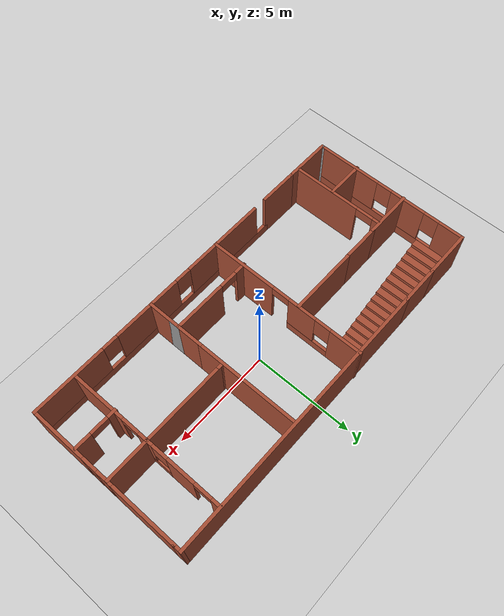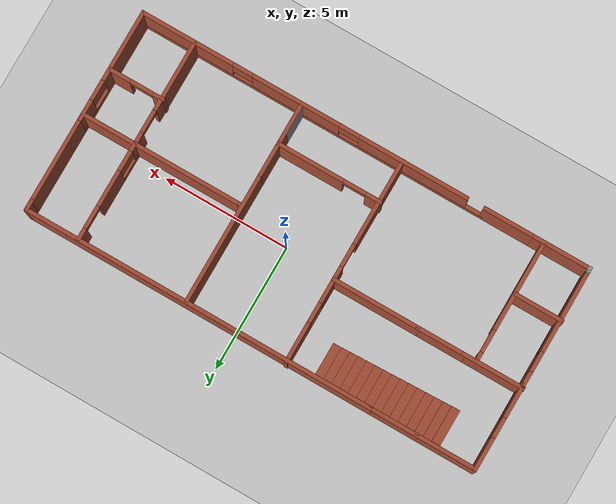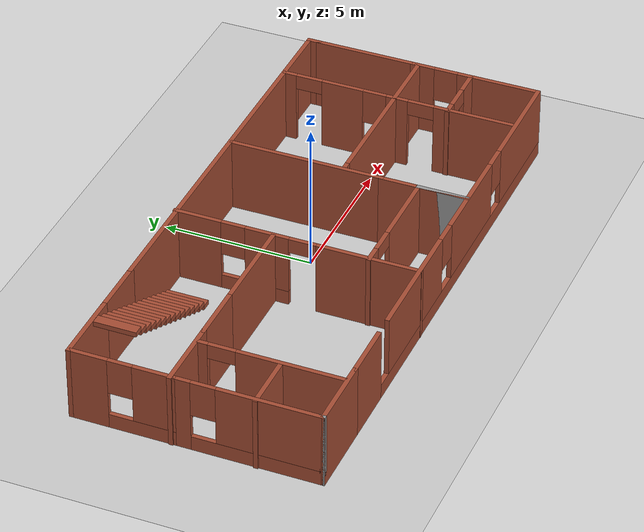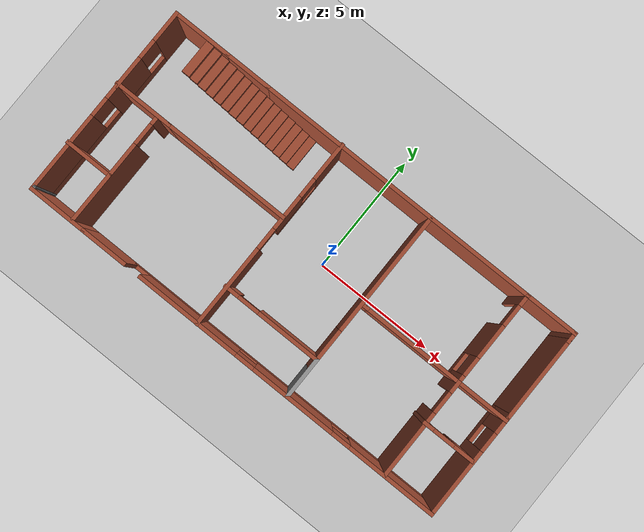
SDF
<sdf version="1.7">
 <world name="default">
  <light name="sun" type="directional">
   <pose>0 0 10 0 -0 0</pose>
   <diffuse>0.8 0.8 0.8 1</diffuse>
   <specular>0.2 0.2 0.2 1</specular>
   <attenuation>
    <range>1000</range>
    <constant>0.9</constant>
    <linear>0.01</linear>
    <quadratic>0.001</quadratic>
   </attenuation>
   <direction>-0.5 0.1 -0.9</direction>
   <spot><inner_angle>0</inner_angle><outer_angle>0</outer_angle><falloff>0</falloff></spot>
  </light>
  <model name="ground_plane">
   <static>1</static>
   <link name="link">
    <collision name="collision">
     <geometry><plane><normal>0 0 1</normal><size>100 100</size></plane></geometry>
     <surface><friction><ode><mu>100</mu><mu2>50</mu2></ode></friction></surface>
    </collision>
    <visual name="visual">
     <cast_shadows>0</cast_shadows>
     <geometry><plane><normal>0 0 1</normal><size>100 100</size></plane></geometry>
     <material>
      <script><uri>file://media/materials/scripts/gazebo.material</uri><name>Gazebo/Grey</name></script>
     </material>
    </visual>
   </link>
  </model>
  <gravity>0 0 -9.8</gravity>
  <magnetic_field>6e-06 2.3e-05 -4.2e-05</magnetic_field>
  <atmosphere type="adiabatic"/>
  <physics type="ode">
   <max_step_size>0.001</max_step_size>
   <real_time_factor>1</real_time_factor>
   <real_time_update_rate>1000</real_time_update_rate>
  </physics>
  <scene><ambient>0.4 0.4 0.4 1</ambient><background>0.7 0.7 0.7 1</background><shadows>1</shadows></scene>
  <audio><device>default</device></audio>
  <spherical_coordinates>
   <surface_model>EARTH_WGS84</surface_model>
   <latitude_deg>0</latitude_deg>
   <longitude_deg>0</longitude_deg>
   <elevation>0</elevation>
   <heading_deg>0</heading_deg>
  </spherical_coordinates>
  <model name="my_test_world">
   <pose>-0.653816 -0.302964 -0.027995 0 -0 0</pose>
   <link name="Stairs_1">
    <visual name="Stairs_1_Visual_0">
     <pose>-2.66061 3.11353 0.083333 0 -0 -1.5708</pose>
     <geometry><box><size>1.40227 0.336583 0.166667</size></box></geometry>
     <material>
      <script><uri>file://media/materials/scripts/gazebo.material</uri><name>Gazebo/Bricks</name></script>
      <ambient>1 1 1 1</ambient>
     </material>
     <meta><layer>0</layer></meta>
    </visual>
    <collision name="Stairs_1_Collision_0">
     <geometry><box><size>1.40227 0.336583 0.166667</size></box></geometry>
     <pose>-2.66061 3.11353 0.083333 0 -0 -1.5708</pose>
    </collision>
    <visual name="Stairs_1_Visual_1">
     <pose>-2.99719 3.11353 0.25 0 -0 -1.5708</pose>
     <geometry><box><size>1.40227 0.336583 0.166667</size></box></geometry>
     <material>
      <script><uri>file://media/materials/scripts/gazebo.material</uri><name>Gazebo/Bricks</name></script>
      <ambient>1 1 1 1</ambient>
     </material>
     <meta><layer>0</layer></meta>
    </visual>
    <collision name="Stairs_1_Collision_1">
     <geometry><box><size>1.40227 0.336583 0.166667</size></box></geometry>
     <pose>-2.99719 3.11353 0.25 0 -0 -1.5708</pose>
    </collision>
    <visual name="Stairs_1_Visual_2">
     <pose>-3.33377 3.11353 0.416667 0 -0 -1.5708</pose>
     <geometry><box><size>1.40227 0.336583 0.166667</size></box></geometry>
     <material>
      <script><uri>file://media/materials/scripts/gazebo.material</uri><name>Gazebo/Bricks</name></script>
      <ambient>1 1 1 1</ambient>
     </material>
     <meta><layer>0</layer></meta>
    </visual>
    <collision name="Stairs_1_Collision_2">
     <geometry><box><size>1.40227 0.336583 0.166667</size></box></geometry>
     <pose>-3.33377 3.11353 0.416667 0 -0 -1.5708</pose>
    </collision>
    <visual name="Stairs_1_Visual_3">
     <pose>-3.67036 3.11353 0.583333 0 -0 -1.5708</pose>
     <geometry><box><size>1.40227 0.336583 0.166667</size></box></geometry>
     <material>
      <script><uri>file://media/materials/scripts/gazebo.material</uri><name>Gazebo/Bricks</name></script>
      <ambient>1 1 1 1</ambient>
     </material>
     <meta><layer>0</layer></meta>
    </visual>
    <collision name="Stairs_1_Collision_3">
     <geometry><box><size>1.40227 0.336583 0.166667</size></box></geometry>
     <pose>-3.67036 3.11353 0.583333 0 -0 -1.5708</pose>
    </collision>
    <visual name="Stairs_1_Visual_4">
     <pose>-4.00694 3.11353 0.75 0 -0 -1.5708</pose>
     <geometry><box><size>1.40227 0.336583 0.166667</size></box></geometry>
     <material>
      <script><uri>file://media/materials/scripts/gazebo.material</uri><name>Gazebo/Bricks</name></script>
      <ambient>1 1 1 1</ambient>
     </material>
     <meta><layer>0</layer></meta>
    </visual>
    <collision name="Stairs_1_Collision_4">
     <geometry><box><size>1.40227 0.336583 0.166667</size></box></geometry>
     <pose>-4.00694 3.11353 0.75 0 -0 -1.5708</pose>
    </collision>
    <visual name="Stairs_1_Visual_5">
     <pose>-4.34352 3.11353 0.916667 0 -0 -1.5708</pose>
     <geometry><box><size>1.40227 0.336583 0.166667</size></box></geometry>
     <material>
      <script><uri>file://media/materials/scripts/gazebo.material</uri><name>Gazebo/Bricks</name></script>
      <ambient>1 1 1 1</ambient>
     </material>
     <meta><layer>0</layer></meta>
    </visual>
    <collision name="Stairs_1_Collision_5">
     <geometry><box><size>1.40227 0.336583 0.166667</size></box></geometry>
     <pose>-4.34352 3.11353 0.916667 0 -0 -1.5708</pose>
    </collision>
    <visual name="Stairs_1_Visual_6">
     <pose>-4.68011 3.11353 1.08333 0 -0 -1.5708</pose>
     <geometry><box><size>1.40227 0.336583 0.166667</size></box></geometry>
     <material>
      <script><uri>file://media/materials/scripts/gazebo.material</uri><name>Gazebo/Bricks</name></script>
      <ambient>1 1 1 1</ambient>
     </material>
     <meta><layer>0</layer></meta>
    </visual>
    <collision name="Stairs_1_Collision_6">
     <geometry><box><size>1.40227 0.336583 0.166667</size></box></geometry>
     <pose>-4.68011 3.11353 1.08333 0 -0 -1.5708</pose>
    </collision>
    <visual name="Stairs_1_Visual_7">
     <pose>-5.01669 3.11353 1.25 0 -0 -1.5708</pose>
     <geometry><box><size>1.40227 0.336583 0.166667</size></box></geometry>
     <material>
      <script><uri>file://media/materials/scripts/gazebo.material</uri><name>Gazebo/Bricks</name></script>
      <ambient>1 1 1 1</ambient>
     </material>
     <meta><layer>0</layer></meta>
    </visual>
    <collision name="Stairs_1_Collision_7">
     <geometry><box><size>1.40227 0.336583 0.166667</size></box></geometry>
     <pose>-5.01669 3.11353 1.25 0 -0 -1.5708</pose>
    </collision>
    <visual name="Stairs_1_Visual_8">
     <pose>-5.35327 3.11353 1.41667 0 -0 -1.5708</pose>
     <geometry><box><size>1.40227 0.336583 0.166667</size></box></geometry>
     <material>
      <script><uri>file://media/materials/scripts/gazebo.material</uri><name>Gazebo/Bricks</name></script>
      <ambient>1 1 1 1</ambient>
     </material>
     <meta><layer>0</layer></meta>
    </visual>
    <collision name="Stairs_1_Collision_8">
     <geometry><box><size>1.40227 0.336583 0.166667</size></box></geometry>
     <pose>-5.35327 3.11353 1.41667 0 -0 -1.5708</pose>
    </collision>
    <visual name="Stairs_1_Visual_9">
     <pose>-5.68986 3.11353 1.58333 0 -0 -1.5708</pose>
     <geometry><box><size>1.40227 0.336583 0.166667</size></box></geometry>
     <material>
      <script><uri>file://media/materials/scripts/gazebo.material</uri><name>Gazebo/Bricks</name></script>
      <ambient>1 1 1 1</ambient>
     </material>
     <meta><layer>0</layer></meta>
    </visual>
    <collision name="Stairs_1_Collision_9">
     <geometry><box><size>1.40227 0.336583 0.166667</size></box></geometry>
     <pose>-5.68986 3.11353 1.58333 0 -0 -1.5708</pose>
    </collision>
    <visual name="Stairs_1_Visual_10">
     <pose>-6.02644 3.11353 1.75 0 -0 -1.5708</pose>
     <geometry><box><size>1.40227 0.336583 0.166667</size></box></geometry>
     <material>
      <script><uri>file://media/materials/scripts/gazebo.material</uri><name>Gazebo/Bricks</name></script>
      <ambient>1 1 1 1</ambient>
     </material>
     <meta><layer>0</layer></meta>
    </visual>
    <collision name="Stairs_1_Collision_10">
     <geometry><box><size>1.40227 0.336583 0.166667</size></box></geometry>
     <pose>-6.02644 3.11353 1.75 0 -0 -1.5708</pose>
    </collision>
    <visual name="Stairs_1_Visual_11">
     <pose>-6.36302 3.11353 1.91667 0 -0 -1.5708</pose>
     <geometry><box><size>1.40227 0.336583 0.166667</size></box></geometry>
     <material>
      <script><uri>file://media/materials/scripts/gazebo.material</uri><name>Gazebo/Bricks</name></script>
      <ambient>1 1 1 1</ambient>
     </material>
     <meta><layer>0</layer></meta>
    </visual>
    <collision name="Stairs_1_Collision_11">
     <geometry><box><size>1.40227 0.336583 0.166667</size></box></geometry>
     <pose>-6.36302 3.11353 1.91667 0 -0 -1.5708</pose>
    </collision>
    <visual name="Stairs_1_Visual_12">
     <pose>-6.69961 3.11353 2.08333 0 -0 -1.5708</pose>
     <geometry><box><size>1.40227 0.336583 0.166667</size></box></geometry>
     <material>
      <script><uri>file://media/materials/scripts/gazebo.material</uri><name>Gazebo/Bricks</name></script>
      <ambient>1 1 1 1</ambient>
     </material>
     <meta><layer>0</layer></meta>
    </visual>
    <collision name="Stairs_1_Collision_12">
     <geometry><box><size>1.40227 0.336583 0.166667</size></box></geometry>
     <pose>-6.69961 3.11353 2.08333 0 -0 -1.5708</pose>
    </collision>
    <visual name="Stairs_1_Visual_13">
     <pose>-7.03619 3.11353 2.25 0 -0 -1.5708</pose>
     <geometry><box><size>1.40227 0.336583 0.166667</size></box></geometry>
     <material>
      <script><uri>file://media/materials/scripts/gazebo.material</uri><name>Gazebo/Bricks</name></script>
      <ambient>1 1 1 1</ambient>
     </material>
     <meta><layer>0</layer></meta>
    </visual>
    <collision name="Stairs_1_Collision_13">
     <geometry><box><size>1.40227 0.336583 0.166667</size></box></geometry>
     <pose>-7.03619 3.11353 2.25 0 -0 -1.5708</pose>
    </collision>
    <visual name="Stairs_1_Visual_14">
     <pose>-7.37277 3.11353 2.41667 0 -0 -1.5708</pose>
     <geometry><box><size>1.40227 0.336583 0.166667</size></box></geometry>
     <material>
      <script><uri>file://media/materials/scripts/gazebo.material</uri><name>Gazebo/Bricks</name></script>
      <ambient>1 1 1 1</ambient>
     </material>
     <meta><layer>0</layer></meta>
    </visual>
    <collision name="Stairs_1_Collision_14">
     <geometry><box><size>1.40227 0.336583 0.166667</size></box></geometry>
     <pose>-7.37277 3.11353 2.41667 0 -0 -1.5708</pose>
    </collision>
   </link>
   <link name="Wall_12">
    <pose>2.12401 -4.15318 0 0 -0 0</pose>
    <visual name="Wall_12_Visual_0">
     <pose>0 0 0.25 0 -0 0</pose>
     <geometry><box><size>14 0.15 0.5</size></box></geometry>
     <material>
      <script><uri>file://media/materials/scripts/gazebo.material</uri><name>Gazebo/Bricks</name></script>
      <ambient>1 1 1 1</ambient>
     </material>
     <meta><layer>0</layer></meta>
    </visual>
    <collision name="Wall_12_Collision_0">
     <geometry><box><size>14 0.15 0.5</size></box></geometry>
     <pose>0 0 0.25 0 -0 0</pose>
    </collision>
    <visual name="Wall_12_Visual_1">
     <pose>-4.05327 0 1.5 0 -0 0</pose>
     <geometry><box><size>4.3893 0.15 2</size></box></geometry>
     <material>
      <script><uri>file://media/materials/scripts/gazebo.material</uri><name>Gazebo/Bricks</name></script>
      <ambient>1 1 1 1</ambient>
     </material>
     <meta><layer>0</layer></meta>
    </visual>
    <collision name="Wall_12_Collision_1">
     <geometry><box><size>4.3893 0.15 2</size></box></geometry>
     <pose>-4.05327 0 1.5 0 -0 0</pose>
    </collision>
    <visual name="Wall_12_Visual_2">
     <pose>0.703592 0 1.5 0 -0 0</pose>
     <geometry><box><size>3.52442 0.15 2</size></box></geometry>
     <material>
      <script><uri>file://media/materials/scripts/gazebo.material</uri><name>Gazebo/Bricks</name></script>
      <ambient>1 1 1 1</ambient>
     </material>
     <meta><layer>0</layer></meta>
    </visual>
    <collision name="Wall_12_Collision_2">
     <geometry><box><size>3.52442 0.15 2</size></box></geometry>
     <pose>0.703592 0 1.5 0 -0 0</pose>
    </collision>
    <visual name="Wall_12_Visual_3">
     <pose>5.1329 0 1.5 0 -0 0</pose>
     <geometry><box><size>3.7342 0.15 2</size></box></geometry>
     <material>
      <script><uri>file://media/materials/scripts/gazebo.material</uri><name>Gazebo/Bricks</name></script>
      <ambient>1 1 1 1</ambient>
     </material>
     <meta><layer>0</layer></meta>
    </visual>
    <collision name="Wall_12_Collision_3">
     <geometry><box><size>3.7342 0.15 2</size></box></geometry>
     <pose>5.1329 0 1.5 0 -0 0</pose>
    </collision>
    <visual name="Wall_12_Visual_4">
     <pose>-1.45862 0 1.9 0 -0 0</pose>
     <geometry><box><size>0.8 0.15 1.2</size></box></geometry>
     <material>
      <script><uri>file://media/materials/scripts/gazebo.material</uri><name>Gazebo/Bricks</name></script>
      <ambient>1 1 1 1</ambient>
     </material>
     <meta><layer>0</layer></meta>
    </visual>
    <collision name="Wall_12_Collision_4">
     <geometry><box><size>0.8 0.15 1.2</size></box></geometry>
     <pose>-1.45862 0 1.9 0 -0 0</pose>
    </collision>
    <visual name="Wall_12_Visual_5">
     <pose>2.8658 0 1.9 0 -0 0</pose>
     <geometry><box><size>0.8 0.15 1.2</size></box></geometry>
     <material>
      <script><uri>file://media/materials/scripts/gazebo.material</uri><name>Gazebo/Bricks</name></script>
      <ambient>1 1 1 1</ambient>
     </material>
     <meta><layer>0</layer></meta>
    </visual>
    <collision name="Wall_12_Collision_5">
     <geometry><box><size>0.8 0.15 1.2</size></box></geometry>
     <pose>2.8658 0 1.9 0 -0 0</pose>
    </collision>
   </link>
   <link name="Wall_13">
    <pose>9.04901 -1.97818 0 0 -0 1.5708</pose>
    <visual name="Wall_13_Visual_0">
     <pose>-0.820674 0 1.25 0 -0 0</pose>
     <geometry><box><size>2.85865 0.15 2.5</size></box></geometry>
     <material>
      <script><uri>file://media/materials/scripts/gazebo.material</uri><name>Gazebo/Bricks</name></script>
      <ambient>1 1 1 1</ambient>
     </material>
     <meta><layer>0</layer></meta>
    </visual>
    <collision name="Wall_13_Collision_0">
     <geometry><box><size>2.85865 0.15 2.5</size></box></geometry>
     <pose>-0.820674 0 1.25 0 -0 0</pose>
    </collision>
    <visual name="Wall_13_Visual_1">
     <pose>1.42933 0 0.25 0 -0 0</pose>
     <geometry><box><size>1.64135 0.15 0.5</size></box></geometry>
     <material>
      <script><uri>file://media/materials/scripts/gazebo.material</uri><name>Gazebo/Bricks</name></script>
      <ambient>1 1 1 1</ambient>
     </material>
     <meta><layer>0</layer></meta>
    </visual>
    <collision name="Wall_13_Collision_1">
     <geometry><box><size>1.64135 0.15 0.5</size></box></geometry>
     <pose>1.42933 0 0.25 0 -0 0</pose>
    </collision>
    <visual name="Wall_13_Visual_2">
     <pose>1.82933 0 1.5 0 -0 0</pose>
     <geometry><box><size>0.841349 0.15 2</size></box></geometry>
     <material>
      <script><uri>file://media/materials/scripts/gazebo.material</uri><name>Gazebo/Bricks</name></script>
      <ambient>1 1 1 1</ambient>
     </material>
     <meta><layer>0</layer></meta>
    </visual>
    <collision name="Wall_13_Collision_2">
     <geometry><box><size>0.841349 0.15 2</size></box></geometry>
     <pose>1.82933 0 1.5 0 -0 0</pose>
    </collision>
    <visual name="Wall_13_Visual_3">
     <pose>1.00865 0 1.9 0 -0 0</pose>
     <geometry><box><size>0.8 0.15 1.2</size></box></geometry>
     <material>
      <script><uri>file://media/materials/scripts/gazebo.material</uri><name>Gazebo/Bricks</name></script>
      <ambient>1 1 1 1</ambient>
     </material>
     <meta><layer>0</layer></meta>
    </visual>
    <collision name="Wall_13_Collision_3">
     <geometry><box><size>0.8 0.15 1.2</size></box></geometry>
     <pose>1.00865 0 1.9 0 -0 0</pose>
    </collision>
   </link>
   <link name="Wall_21">
    <pose>6.94083 1.93273 0 0 -0 -1.5708</pose>
    <visual name="Wall_21_Visual_0">
     <pose>-1.75506 0 1.25 0 -0 0</pose>
     <geometry><box><size>0.489884 0.15 2.5</size></box></geometry>
     <material>
      <script><uri>file://media/materials/scripts/gazebo.material</uri><name>Gazebo/Bricks</name></script>
      <ambient>1 1 1 1</ambient>
     </material>
     <meta><layer>0</layer></meta>
    </visual>
    <collision name="Wall_21_Collision_0">
     <geometry><box><size>0.489884 0.15 2.5</size></box></geometry>
     <pose>-1.75506 0 1.25 0 -0 0</pose>
    </collision>
    <visual name="Wall_21_Visual_1">
     <pose>0.111357 0 1.25 0 -0 0</pose>
     <geometry><box><size>1.44295 0.15 2.5</size></box></geometry>
     <material>
      <script><uri>file://media/materials/scripts/gazebo.material</uri><name>Gazebo/Bricks</name></script>
      <ambient>1 1 1 1</ambient>
     </material>
     <meta><layer>0</layer></meta>
    </visual>
    <collision name="Wall_21_Collision_1">
     <geometry><box><size>1.44295 0.15 2.5</size></box></geometry>
     <pose>0.111357 0 1.25 0 -0 0</pose>
    </collision>
    <visual name="Wall_21_Visual_2">
     <pose>1.41641 0 0.25 0 -0 0</pose>
     <geometry><box><size>1.16717 0.15 0.5</size></box></geometry>
     <material>
      <script><uri>file://media/materials/scripts/gazebo.material</uri><name>Gazebo/Bricks</name></script>
      <ambient>1 1 1 1</ambient>
     </material>
     <meta><layer>0</layer></meta>
    </visual>
    <collision name="Wall_21_Collision_2">
     <geometry><box><size>1.16717 0.15 0.5</size></box></geometry>
     <pose>1.41641 0 0.25 0 -0 0</pose>
    </collision>
    <visual name="Wall_21_Visual_3">
     <pose>1.81641 0 1.5 0 -0 0</pose>
     <geometry><box><size>0.367169 0.15 2</size></box></geometry>
     <material>
      <script><uri>file://media/materials/scripts/gazebo.material</uri><name>Gazebo/Bricks</name></script>
      <ambient>1 1 1 1</ambient>
     </material>
     <meta><layer>0</layer></meta>
    </visual>
    <collision name="Wall_21_Collision_3">
     <geometry><box><size>0.367169 0.15 2</size></box></geometry>
     <pose>1.81641 0 1.5 0 -0 0</pose>
    </collision>
    <visual name="Wall_21_Visual_4">
     <pose>1.23283 0 1.9 0 -0 0</pose>
     <geometry><box><size>0.8 0.15 1.2</size></box></geometry>
     <material>
      <script><uri>file://media/materials/scripts/gazebo.material</uri><name>Gazebo/Bricks</name></script>
      <ambient>1 1 1 1</ambient>
     </material>
     <meta><layer>0</layer></meta>
    </visual>
    <collision name="Wall_21_Collision_4">
     <geometry><box><size>0.8 0.15 1.2</size></box></geometry>
     <pose>1.23283 0 1.9 0 -0 0</pose>
    </collision>
    <visual name="Wall_21_Visual_5">
     <pose>-1.06012 0 2.25 0 -0 0</pose>
     <geometry><box><size>0.9 0.15 0.5</size></box></geometry>
     <material>
      <script><uri>file://media/materials/scripts/gazebo.material</uri><name>Gazebo/Bricks</name></script>
      <ambient>1 1 1 1</ambient>
     </material>
     <meta><layer>0</layer></meta>
    </visual>
    <collision name="Wall_21_Collision_5">
     <geometry><box><size>0.9 0.15 0.5</size></box></geometry>
     <pose>-1.06012 0 2.25 0 -0 0</pose>
    </collision>
   </link>
   <link name="Wall_22">
    <collision name="Wall_22_Collision">
     <geometry><box><size>2.25 0.15 2.5</size></box></geometry>
     <pose>0 0 1.25 0 -0 0</pose>
    </collision>
    <visual name="Wall_22_Visual">
     <pose>0 0 1.25 0 -0 0</pose>
     <geometry><box><size>2.25 0.15 2.5</size></box></geometry>
     <material>
      <script><uri>file://media/materials/scripts/gazebo.material</uri><name>Gazebo/Bricks</name></script>
      <ambient>1 1 1 1</ambient>
     </material>
     <meta><layer>0</layer></meta>
    </visual>
    <pose>7.99083 0.007727 0 0 -0 0</pose>
   </link>
   <link name="Wall_30">
    <pose>6.94083 -2.04227 0 0 -0 -1.5708</pose>
    <visual name="Wall_30_Visual_0">
     <pose>-1.85404 0 1.25 0 -0 0</pose>
     <geometry><box><size>0.541917 0.15 2.5</size></box></geometry>
     <material>
      <script><uri>file://media/materials/scripts/gazebo.material</uri><name>Gazebo/Bricks</name></script>
      <ambient>1 1 1 1</ambient>
     </material>
     <meta><layer>0</layer></meta>
    </visual>
    <collision name="Wall_30_Collision_0">
     <geometry><box><size>0.541917 0.15 2.5</size></box></geometry>
     <pose>-1.85404 0 1.25 0 -0 0</pose>
    </collision>
    <visual name="Wall_30_Visual_1">
     <pose>0.720958 0 1.25 0 -0 0</pose>
     <geometry><box><size>2.80808 0.15 2.5</size></box></geometry>
     <material>
      <script><uri>file://media/materials/scripts/gazebo.material</uri><name>Gazebo/Bricks</name></script>
      <ambient>1 1 1 1</ambient>
     </material>
     <meta><layer>0</layer></meta>
    </visual>
    <collision name="Wall_30_Collision_1">
     <geometry><box><size>2.80808 0.15 2.5</size></box></geometry>
     <pose>0.720958 0 1.25 0 -0 0</pose>
    </collision>
    <visual name="Wall_30_Visual_2">
     <pose>-1.13308 0 2.25 0 -0 0</pose>
     <geometry><box><size>0.9 0.15 0.5</size></box></geometry>
     <material>
      <script><uri>file://media/materials/scripts/gazebo.material</uri><name>Gazebo/Bricks</name></script>
      <ambient>1 1 1 1</ambient>
     </material>
     <meta><layer>0</layer></meta>
    </visual>
    <collision name="Wall_30_Collision_2">
     <geometry><box><size>0.9 0.15 0.5</size></box></geometry>
     <pose>-1.13308 0 2.25 0 -0 0</pose>
    </collision>
   </link>
   <link name="Wall_32">
    <pose>7.9506 -1.83441 0 0 -0 0</pose>
    <visual name="Wall_32_Visual_0">
     <pose>-0.890115 0 1.25 0 -0 0</pose>
     <geometry><box><size>0.46977 0.15 2.5</size></box></geometry>
     <material>
      <script><uri>file://media/materials/scripts/gazebo.material</uri><name>Gazebo/Bricks</name></script>
      <ambient>1 1 1 1</ambient>
     </material>
     <meta><layer>0</layer></meta>
    </visual>
    <collision name="Wall_32_Collision_0">
     <geometry><box><size>0.46977 0.15 2.5</size></box></geometry>
     <pose>-0.890115 0 1.25 0 -0 0</pose>
    </collision>
    <visual name="Wall_32_Visual_1">
     <pose>0.684885 0 1.25 0 -0 0</pose>
     <geometry><box><size>0.88023 0.15 2.5</size></box></geometry>
     <material>
      <script><uri>file://media/materials/scripts/gazebo.material</uri><name>Gazebo/Bricks</name></script>
      <ambient>1 1 1 1</ambient>
     </material>
     <meta><layer>0</layer></meta>
    </visual>
    <collision name="Wall_32_Collision_1">
     <geometry><box><size>0.88023 0.15 2.5</size></box></geometry>
     <pose>0.684885 0 1.25 0 -0 0</pose>
    </collision>
    <visual name="Wall_32_Visual_2">
     <pose>-0.20523 0 2.25 0 -0 0</pose>
     <geometry><box><size>0.9 0.15 0.5</size></box></geometry>
     <material>
      <script><uri>file://media/materials/scripts/gazebo.material</uri><name>Gazebo/Bricks</name></script>
      <ambient>1 1 1 1</ambient>
     </material>
     <meta><layer>0</layer></meta>
    </visual>
    <collision name="Wall_32_Collision_2">
     <geometry><box><size>0.9 0.15 0.5</size></box></geometry>
     <pose>-0.20523 0 2.25 0 -0 0</pose>
    </collision>
   </link>
   <link name="Wall_36">
    <collision name="Wall_36_Collision">
     <geometry><box><size>4.25 0.15 2.5</size></box></geometry>
     <pose>0 0 1.25 0 -0 0</pose>
    </collision>
    <visual name="Wall_36_Visual">
     <pose>0 0 1.25 0 -0 0</pose>
     <geometry><box><size>4.25 0.15 2.5</size></box></geometry>
     <material>
      <script><uri>file://media/materials/scripts/gazebo.material</uri><name>Gazebo/Bricks</name></script>
      <ambient>0.921569 0.807843 0.615686 1</ambient>
     </material>
     <meta><layer>0</layer></meta>
    </visual>
    <pose>4.89083 0.007727 0 0 -0 3.14159</pose>
   </link>
   <link name="Wall_38">
    <pose>-1.46664 -0.111818 0 0 -0 -1.5708</pose>
    <visual name="Wall_38_Visual_0">
     <pose>-3.31199 0 1.25 0 -0 0</pose>
     <geometry><box><size>1.62602 0.15 2.5</size></box></geometry>
     <material>
      <script><uri>file://media/materials/scripts/gazebo.material</uri><name>Gazebo/Bricks</name></script>
      <ambient>1 1 1 1</ambient>
     </material>
     <meta><layer>0</layer></meta>
    </visual>
    <collision name="Wall_38_Collision_0">
     <geometry><box><size>1.62602 0.15 2.5</size></box></geometry>
     <pose>-3.31199 0 1.25 0 -0 0</pose>
    </collision>
    <visual name="Wall_38_Visual_1">
     <pose>2.39454 0 1.25 0 -0 0</pose>
     <geometry><box><size>3.46092 0.15 2.5</size></box></geometry>
     <material>
      <script><uri>file://media/materials/scripts/gazebo.material</uri><name>Gazebo/Bricks</name></script>
      <ambient>1 1 1 1</ambient>
     </material>
     <meta><layer>0</layer></meta>
    </visual>
    <collision name="Wall_38_Collision_1">
     <geometry><box><size>3.46092 0.15 2.5</size></box></geometry>
     <pose>2.39454 0 1.25 0 -0 0</pose>
    </collision>
    <visual name="Wall_38_Visual_2">
     <pose>-1.36745 0 0.25 0 -0 0</pose>
     <geometry><box><size>2.26306 0.15 0.5</size></box></geometry>
     <material>
      <script><uri>file://media/materials/scripts/gazebo.material</uri><name>Gazebo/Bricks</name></script>
      <ambient>1 1 1 1</ambient>
     </material>
     <meta><layer>0</layer></meta>
    </visual>
    <collision name="Wall_38_Collision_2">
     <geometry><box><size>2.26306 0.15 0.5</size></box></geometry>
     <pose>-1.36745 0 0.25 0 -0 0</pose>
    </collision>
    <visual name="Wall_38_Visual_3">
     <pose>-0.967453 0 1.5 0 -0 0</pose>
     <geometry><box><size>1.46306 0.15 2</size></box></geometry>
     <material>
      <script><uri>file://media/materials/scripts/gazebo.material</uri><name>Gazebo/Bricks</name></script>
      <ambient>1 1 1 1</ambient>
     </material>
     <meta><layer>0</layer></meta>
    </visual>
    <collision name="Wall_38_Collision_3">
     <geometry><box><size>1.46306 0.15 2</size></box></geometry>
     <pose>-0.967453 0 1.5 0 -0 0</pose>
    </collision>
    <visual name="Wall_38_Visual_4">
     <pose>-2.09898 0 1.9 0 -0 0</pose>
     <geometry><box><size>0.8 0.15 1.2</size></box></geometry>
     <material>
      <script><uri>file://media/materials/scripts/gazebo.material</uri><name>Gazebo/Bricks</name></script>
      <ambient>1 1 1 1</ambient>
     </material>
     <meta><layer>0</layer></meta>
    </visual>
    <collision name="Wall_38_Collision_4">
     <geometry><box><size>0.8 0.15 1.2</size></box></geometry>
     <pose>-2.09898 0 1.9 0 -0 0</pose>
    </collision>
    <visual name="Wall_38_Visual_5">
     <pose>0.214077 0 2.25 0 -0 0</pose>
     <geometry><box><size>0.9 0.15 0.5</size></box></geometry>
     <material>
      <script><uri>file://media/materials/scripts/gazebo.material</uri><name>Gazebo/Bricks</name></script>
      <ambient>1 1 1 1</ambient>
     </material>
     <meta><layer>0</layer></meta>
    </visual>
    <collision name="Wall_38_Collision_5">
     <geometry><box><size>0.9 0.15 0.5</size></box></geometry>
     <pose>0.214077 0 2.25 0 -0 0</pose>
    </collision>
   </link>
   <link name="Wall_40">
    <collision name="Wall_40_Collision">
     <geometry><box><size>3.5 0.15 2.5</size></box></geometry>
     <pose>0 0 1.25 0 -0 0</pose>
    </collision>
    <visual name="Wall_40_Visual">
     <pose>0 0 1.25 0 -0 0</pose>
     <geometry><box><size>3.5 0.15 2.5</size></box></geometry>
     <material>
      <script><uri>file://media/materials/scripts/gazebo.material</uri><name>Gazebo/Bricks</name></script>
      <ambient>1 1 1 1</ambient>
     </material>
     <meta><layer>0</layer></meta>
    </visual>
    <pose>-3.16176 0.639556 0 0 -0 3.14159</pose>
   </link>
   <link name="Wall_42">
    <collision name="Wall_42_Collision">
     <geometry><box><size>2 0.15 2.5</size></box></geometry>
     <pose>0 0 1.25 0 -0 0</pose>
    </collision>
    <visual name="Wall_42_Visual">
     <pose>0 0 1.25 0 -0 0</pose>
     <geometry><box><size>2 0.15 2.5</size></box></geometry>
     <material>
      <script><uri>file://media/materials/scripts/gazebo.material</uri><name>Gazebo/Bricks</name></script>
      <ambient>1 1 1 1</ambient>
     </material>
     <meta><layer>0</layer></meta>
    </visual>
    <pose>-5.72599 -4.15318 0 0 -0 3.14159</pose>
   </link>
   <link name="Wall_46">
    <collision name="Wall_46_Collision">
     <geometry><box><size>2 0.15 2.5</size></box></geometry>
     <pose>0 0 1.25 0 -0 0</pose>
    </collision>
    <visual name="Wall_46_Visual">
     <pose>0 0 1.25 0 -0 0</pose>
     <geometry><box><size>2 0.15 2.5</size></box></geometry>
     <material>
      <script><uri>file://media/materials/scripts/gazebo.material</uri><name>Gazebo/Bricks</name></script>
      <ambient>1 1 1 1</ambient>
     </material>
     <meta><layer>0</layer></meta>
    </visual>
    <pose>-5.72599 3.89682 0 0 -0 3.14159</pose>
   </link>
   <link name="Wall_48">
    <collision name="Wall_48_Collision">
     <geometry><box><size>2 0.15 2.5</size></box></geometry>
     <pose>0 0 1.25 0 -0 0</pose>
    </collision>
    <visual name="Wall_48_Visual">
     <pose>0 0 1.25 0 -0 0</pose>
     <geometry><box><size>2 0.15 2.5</size></box></geometry>
     <material>
      <script><uri>file://media/materials/scripts/gazebo.material</uri><name>Gazebo/Bricks</name></script>
      <ambient>1 1 1 1</ambient>
     </material>
     <meta><layer>0</layer></meta>
    </visual>
    <pose>-5.76176 0.639556 0 0 -0 3.14159</pose>
   </link>
   <link name="Wall_50">
    <collision name="Wall_50_Collision">
     <geometry><box><size>2.5 0.15 2.5</size></box></geometry>
     <pose>0 0 1.25 0 -0 0</pose>
    </collision>
    <visual name="Wall_50_Visual">
     <pose>0 0 1.25 0 -0 0</pose>
     <geometry><box><size>2.5 0.15 2.5</size></box></geometry>
     <material>
      <script><uri>file://media/materials/scripts/gazebo.material</uri><name>Gazebo/Bricks</name></script>
      <ambient>1 1 1 1</ambient>
     </material>
     <meta><layer>0</layer></meta>
    </visual>
    <pose>-7.82599 3.89682 0 0 -0 3.14159</pose>
   </link>
   <link name="Wall_51">
    <pose>-9.00099 2.22182 0 0 -0 -1.5708</pose>
    <visual name="Wall_51_Visual_0">
     <pose>-1.08841 0 1.25 0 -0 0</pose>
     <geometry><box><size>1.32318 0.15 2.5</size></box></geometry>
     <material>
      <script><uri>file://media/materials/scripts/gazebo.material</uri><name>Gazebo/Bricks</name></script>
      <ambient>1 1 1 1</ambient>
     </material>
     <meta><layer>0</layer></meta>
    </visual>
    <collision name="Wall_51_Collision_0">
     <geometry><box><size>1.32318 0.15 2.5</size></box></geometry>
     <pose>-1.08841 0 1.25 0 -0 0</pose>
    </collision>
    <visual name="Wall_51_Visual_1">
     <pose>0.661589 0 0.25 0 -0 0</pose>
     <geometry><box><size>2.17682 0.15 0.5</size></box></geometry>
     <material>
      <script><uri>file://media/materials/scripts/gazebo.material</uri><name>Gazebo/Bricks</name></script>
      <ambient>1 1 1 1</ambient>
     </material>
     <meta><layer>0</layer></meta>
    </visual>
    <collision name="Wall_51_Collision_1">
     <geometry><box><size>2.17682 0.15 0.5</size></box></geometry>
     <pose>0.661589 0 0.25 0 -0 0</pose>
    </collision>
    <visual name="Wall_51_Visual_2">
     <pose>1.06159 0 1.5 0 -0 0</pose>
     <geometry><box><size>1.37682 0.15 2</size></box></geometry>
     <material>
      <script><uri>file://media/materials/scripts/gazebo.material</uri><name>Gazebo/Bricks</name></script>
      <ambient>1 1 1 1</ambient>
     </material>
     <meta><layer>0</layer></meta>
    </visual>
    <collision name="Wall_51_Collision_2">
     <geometry><box><size>1.37682 0.15 2</size></box></geometry>
     <pose>1.06159 0 1.5 0 -0 0</pose>
    </collision>
    <visual name="Wall_51_Visual_3">
     <pose>-0.026823 0 1.9 0 -0 0</pose>
     <geometry><box><size>0.8 0.15 1.2</size></box></geometry>
     <material>
      <script><uri>file://media/materials/scripts/gazebo.material</uri><name>Gazebo/Bricks</name></script>
      <ambient>1 1 1 1</ambient>
     </material>
     <meta><layer>0</layer></meta>
    </visual>
    <collision name="Wall_51_Collision_3">
     <geometry><box><size>0.8 0.15 1.2</size></box></geometry>
     <pose>-0.026823 0 1.9 0 -0 0</pose>
    </collision>
   </link>
   <link name="Wall_52">
    <pose>-9.00099 -1.75318 0 0 -0 -1.5708</pose>
    <visual name="Wall_52_Visual_0">
     <pose>-2.06092 0 1.25 0 -0 0</pose>
     <geometry><box><size>0.628169 0.15 2.5</size></box></geometry>
     <material>
      <script><uri>file://media/materials/scripts/gazebo.material</uri><name>Gazebo/Bricks</name></script>
      <ambient>1 1 1 1</ambient>
     </material>
     <meta><layer>0</layer></meta>
    </visual>
    <collision name="Wall_52_Collision_0">
     <geometry><box><size>0.628169 0.15 2.5</size></box></geometry>
     <pose>-2.06092 0 1.25 0 -0 0</pose>
    </collision>
    <visual name="Wall_52_Visual_1">
     <pose>0.314084 0 0.25 0 -0 0</pose>
     <geometry><box><size>4.12183 0.15 0.5</size></box></geometry>
     <material>
      <script><uri>file://media/materials/scripts/gazebo.material</uri><name>Gazebo/Bricks</name></script>
      <ambient>1 1 1 1</ambient>
     </material>
     <meta><layer>0</layer></meta>
    </visual>
    <collision name="Wall_52_Collision_1">
     <geometry><box><size>4.12183 0.15 0.5</size></box></geometry>
     <pose>0.314084 0 0.25 0 -0 0</pose>
    </collision>
    <visual name="Wall_52_Visual_2">
     <pose>0.714084 0 1.5 0 -0 0</pose>
     <geometry><box><size>3.32183 0.15 2</size></box></geometry>
     <material>
      <script><uri>file://media/materials/scripts/gazebo.material</uri><name>Gazebo/Bricks</name></script>
      <ambient>1 1 1 1</ambient>
     </material>
     <meta><layer>0</layer></meta>
    </visual>
    <collision name="Wall_52_Collision_2">
     <geometry><box><size>3.32183 0.15 2</size></box></geometry>
     <pose>0.714084 0 1.5 0 -0 0</pose>
    </collision>
    <visual name="Wall_52_Visual_3">
     <pose>-1.34683 0 1.9 0 -0 0</pose>
     <geometry><box><size>0.8 0.15 1.2</size></box></geometry>
     <material>
      <script><uri>file://media/materials/scripts/gazebo.material</uri><name>Gazebo/Bricks</name></script>
      <ambient>1 1 1 1</ambient>
     </material>
     <meta><layer>0</layer></meta>
    </visual>
    <collision name="Wall_52_Collision_3">
     <geometry><box><size>0.8 0.15 1.2</size></box></geometry>
     <pose>-1.34683 0 1.9 0 -0 0</pose>
    </collision>
   </link>
   <link name="Wall_53">
    <collision name="Wall_53_Collision">
     <geometry><box><size>0.15 0.15 2.5</size></box></geometry>
     <pose>0 0 1.25 0 -0 0</pose>
    </collision>
    <visual name="Wall_53_Visual">
     <pose>0 0 1.25 0 -0 0</pose>
     <geometry><box><size>0.15 0.15 2.5</size></box></geometry>
     <material>
      <script><uri>file://media/materials/scripts/gazebo.material</uri><name>Gazebo/Grey</name></script>
      <ambient>1 1 1 1</ambient>
     </material>
     <meta><layer>0</layer></meta>
    </visual>
    <pose>-9.00099 -4.05318 0 0 -0 0</pose>
   </link>
   <link name="Wall_54">
    <collision name="Wall_54_Collision">
     <geometry><box><size>0.25 0.15 2.5</size></box></geometry>
     <pose>0 0 1.25 0 -0 0</pose>
    </collision>
    <visual name="Wall_54_Visual">
     <pose>0 0 1.25 0 -0 0</pose>
     <geometry><box><size>0.25 0.15 2.5</size></box></geometry>
     <material>
      <script><uri>file://media/materials/scripts/gazebo.material</uri><name>Gazebo/Grey</name></script>
      <ambient>1 1 1 1</ambient>
     </material>
     <meta><layer>0</layer></meta>
    </visual>
    <pose>-9.00099 -4.10318 0 0 -0 -1.5708</pose>
   </link>
   <link name="Wall_55">
    <collision name="Wall_55_Collision">
     <geometry><box><size>2.5 0.15 2.5</size></box></geometry>
     <pose>0 0 1.25 0 -0 0</pose>
    </collision>
    <visual name="Wall_55_Visual">
     <pose>0 0 1.25 0 -0 0</pose>
     <geometry><box><size>2.5 0.15 2.5</size></box></geometry>
     <material>
      <script><uri>file://media/materials/scripts/gazebo.material</uri><name>Gazebo/Bricks</name></script>
      <ambient>1 1 1 1</ambient>
     </material>
     <meta><layer>0</layer></meta>
    </visual>
    <pose>-7.82599 -4.15318 0 0 -0 0</pose>
   </link>
   <link name="Wall_59">
    <collision name="Wall_59_Collision">
     <geometry><box><size>2.5 0.15 2.5</size></box></geometry>
     <pose>0 0 1.25 0 -0 0</pose>
    </collision>
    <visual name="Wall_59_Visual">
     <pose>0 0 1.25 0 -0 0</pose>
     <geometry><box><size>2.5 0.15 2.5</size></box></geometry>
     <material>
      <script><uri>file://media/materials/scripts/gazebo.material</uri><name>Gazebo/Bricks</name></script>
      <ambient>1 1 1 1</ambient>
     </material>
     <meta><layer>0</layer></meta>
    </visual>
    <pose>-7.86176 0.639556 0 0 -0 3.14159</pose>
   </link>
   <link name="Wall_61">
    <pose>-7.1789 -1.74691 0 0 -0 1.5708</pose>
    <visual name="Wall_61_Visual_0">
     <pose>-0.631597 0 1.25 0 -0 0</pose>
     <geometry><box><size>3.48681 0.15 2.5</size></box></geometry>
     <material>
      <script><uri>file://media/materials/scripts/gazebo.material</uri><name>Gazebo/Bricks</name></script>
      <ambient>1 1 1 1</ambient>
     </material>
     <meta><layer>0</layer></meta>
    </visual>
    <collision name="Wall_61_Collision_0">
     <geometry><box><size>3.48681 0.15 2.5</size></box></geometry>
     <pose>-0.631597 0 1.25 0 -0 0</pose>
    </collision>
    <visual name="Wall_61_Visual_1">
     <pose>2.1934 0 1.25 0 -0 0</pose>
     <geometry><box><size>0.363194 0.15 2.5</size></box></geometry>
     <material>
      <script><uri>file://media/materials/scripts/gazebo.material</uri><name>Gazebo/Bricks</name></script>
      <ambient>1 1 1 1</ambient>
     </material>
     <meta><layer>0</layer></meta>
    </visual>
    <collision name="Wall_61_Collision_1">
     <geometry><box><size>0.363194 0.15 2.5</size></box></geometry>
     <pose>2.1934 0 1.25 0 -0 0</pose>
    </collision>
    <visual name="Wall_61_Visual_2">
     <pose>1.56181 0 2.25 0 -0 0</pose>
     <geometry><box><size>0.9 0.15 0.5</size></box></geometry>
     <material>
      <script><uri>file://media/materials/scripts/gazebo.material</uri><name>Gazebo/Bricks</name></script>
      <ambient>1 1 1 1</ambient>
     </material>
     <meta><layer>0</layer></meta>
    </visual>
    <collision name="Wall_61_Collision_2">
     <geometry><box><size>0.9 0.15 0.5</size></box></geometry>
     <pose>1.56181 0 2.25 0 -0 0</pose>
    </collision>
   </link>
   <link name="Wall_63">
    <collision name="Wall_63_Collision">
     <geometry><box><size>2 0.15 2.5</size></box></geometry>
     <pose>0 0 1.25 0 -0 0</pose>
    </collision>
    <visual name="Wall_63_Visual">
     <pose>0 0 1.25 0 -0 0</pose>
     <geometry><box><size>2 0.15 2.5</size></box></geometry>
     <material>
      <script><uri>file://media/materials/scripts/gazebo.material</uri><name>Gazebo/Bricks</name></script>
      <ambient>1 1 1 1</ambient>
     </material>
     <meta><layer>0</layer></meta>
    </visual>
    <pose>-8.12401 -2.07578 0 0 -0 3.14159</pose>
   </link>
   <link name="Wall_65">
    <pose>0.543129 -2.51828 0 0 -0 0</pose>
    <visual name="Wall_65_Visual_0">
     <pose>-1.7996 0 1.25 0 -0 0</pose>
     <geometry><box><size>0.650792 0.15 2.5</size></box></geometry>
     <material>
      <script><uri>file://media/materials/scripts/gazebo.material</uri><name>Gazebo/Bricks</name></script>
      <ambient>1 1 1 1</ambient>
     </material>
     <meta><layer>0</layer></meta>
    </visual>
    <collision name="Wall_65_Collision_0">
     <geometry><box><size>0.650792 0.15 2.5</size></box></geometry>
     <pose>-1.7996 0 1.25 0 -0 0</pose>
    </collision>
    <visual name="Wall_65_Visual_1">
     <pose>0.775396 0 1.25 0 -0 0</pose>
     <geometry><box><size>2.69921 0.15 2.5</size></box></geometry>
     <material>
      <script><uri>file://media/materials/scripts/gazebo.material</uri><name>Gazebo/Bricks</name></script>
      <ambient>1 1 1 1</ambient>
     </material>
     <meta><layer>0</layer></meta>
    </visual>
    <collision name="Wall_65_Collision_1">
     <geometry><box><size>2.69921 0.15 2.5</size></box></geometry>
     <pose>0.775396 0 1.25 0 -0 0</pose>
    </collision>
    <visual name="Wall_65_Visual_2">
     <pose>-1.02421 0 2.25 0 -0 0</pose>
     <geometry><box><size>0.9 0.15 0.5</size></box></geometry>
     <material>
      <script><uri>file://media/materials/scripts/gazebo.material</uri><name>Gazebo/Bricks</name></script>
      <ambient>1 1 1 1</ambient>
     </material>
     <meta><layer>0</layer></meta>
    </visual>
    <collision name="Wall_65_Collision_2">
     <geometry><box><size>0.9 0.15 0.5</size></box></geometry>
     <pose>-1.02421 0 2.25 0 -0 0</pose>
    </collision>
   </link>
   <link name="Wall_67">
    <collision name="Wall_67_Collision">
     <geometry><box><size>1.75 0.15 2.5</size></box></geometry>
     <pose>0 0 1.25 0 -0 0</pose>
    </collision>
    <visual name="Wall_67_Visual">
     <pose>0 0 1.25 0 -0 0</pose>
     <geometry><box><size>1.75 0.15 2.5</size></box></geometry>
     <material>
      <script><uri>file://media/materials/scripts/gazebo.material</uri><name>Gazebo/Grey</name></script>
      <ambient>1 1 1 1</ambient>
     </material>
     <meta><layer>0</layer></meta>
    </visual>
    <pose>2.59313 -3.31827 0 0 -0 -1.5708</pose>
   </link>
   <link name="Wall_68">
    <collision name="Wall_68_Collision">
     <geometry><box><size>3 0.15 2.5</size></box></geometry>
     <pose>0 0 1.25 0 -0 0</pose>
    </collision>
    <visual name="Wall_68_Visual">
     <pose>0 0 1.25 0 -0 0</pose>
     <geometry><box><size>3 0.15 2.5</size></box></geometry>
     <material>
      <script><uri>file://media/materials/scripts/gazebo.material</uri><name>Gazebo/Bricks</name></script>
      <ambient>1 1 1 1</ambient>
     </material>
     <meta><layer>0</layer></meta>
    </visual>
    <pose>2.59313 -2.69327 0 0 -0 1.5708</pose>
   </link>
   <link name="Wall_7">
    <collision name="Wall_7_Collision">
     <geometry><box><size>3.5 0.15 2.5</size></box></geometry>
     <pose>0 0 1.25 0 -0 0</pose>
    </collision>
    <visual name="Wall_7_Visual">
     <pose>0 0 1.25 0 -0 0</pose>
     <geometry><box><size>3.5 0.15 2.5</size></box></geometry>
     <material>
      <script><uri>file://media/materials/scripts/gazebo.material</uri><name>Gazebo/Bricks</name></script>
      <ambient>1 1 1 1</ambient>
     </material>
     <meta><layer>0</layer></meta>
    </visual>
    <pose>9.04901 1.87182 0 0 -0 1.5708</pose>
   </link>
   <link name="Wall_70">
    <collision name="Wall_70_Collision">
     <geometry><box><size>5.25 0.15 2.5</size></box></geometry>
     <pose>0 0 1.25 0 -0 0</pose>
    </collision>
    <visual name="Wall_70_Visual">
     <pose>0 0 1.25 0 -0 0</pose>
     <geometry><box><size>5.25 0.15 2.5</size></box></geometry>
     <material>
      <script><uri>file://media/materials/scripts/gazebo.material</uri><name>Gazebo/Bricks</name></script>
      <ambient>1 1 1 1</ambient>
     </material>
     <meta><layer>0</layer></meta>
    </visual>
    <pose>2.59313 1.28173 0 0 -0 1.5708</pose>
   </link>
   <link name="Wall_72">
    <collision name="Wall_72_Collision">
     <geometry><box><size>0.25 0.15 2.5</size></box></geometry>
     <pose>0 0 1.25 0 -0 0</pose>
    </collision>
    <visual name="Wall_72_Visual">
     <pose>0 0 1.25 0 -0 0</pose>
     <geometry><box><size>0.25 0.15 2.5</size></box></geometry>
     <material>
      <script><uri>file://media/materials/scripts/gazebo.material</uri><name>Gazebo/Bricks</name></script>
      <ambient>1 1 1 1</ambient>
     </material>
     <meta><layer>0</layer></meta>
    </visual>
    <pose>2.79083 0.007727 0 0 -0 3.14159</pose>
   </link>
   <link name="Wall_8">
    <collision name="Wall_8_Collision">
     <geometry><box><size>0.5 0.15 2.5</size></box></geometry>
     <pose>0 0 1.25 0 -0 0</pose>
    </collision>
    <visual name="Wall_8_Visual">
     <pose>0 0 1.25 0 -0 0</pose>
     <geometry><box><size>0.5 0.15 2.5</size></box></geometry>
     <material>
      <script><uri>file://media/materials/scripts/gazebo.material</uri><name>Gazebo/Bricks</name></script>
      <ambient>1 1 1 1</ambient>
     </material>
     <meta><layer>0</layer></meta>
    </visual>
    <pose>9.04901 3.72182 0 0 -0 1.5708</pose>
   </link>
   <link name="Wall_9">
    <collision name="Wall_9_Collision">
     <geometry><box><size>14 0.15 2.5</size></box></geometry>
     <pose>0 0 1.25 0 -0 0</pose>
    </collision>
    <visual name="Wall_9_Visual">
     <pose>0 0 1.25 0 -0 0</pose>
     <geometry><box><size>14 0.15 2.5</size></box></geometry>
     <material>
      <script><uri>file://media/materials/scripts/gazebo.material</uri><name>Gazebo/Bricks</name></script>
      <ambient>1 1 1 1</ambient>
     </material>
     <meta><layer>0</layer></meta>
    </visual>
    <pose>2.12401 3.89682 0 0 -0 3.14159</pose>
   </link>
   <static>1</static>
  </model>
 </world>
</sdf>
